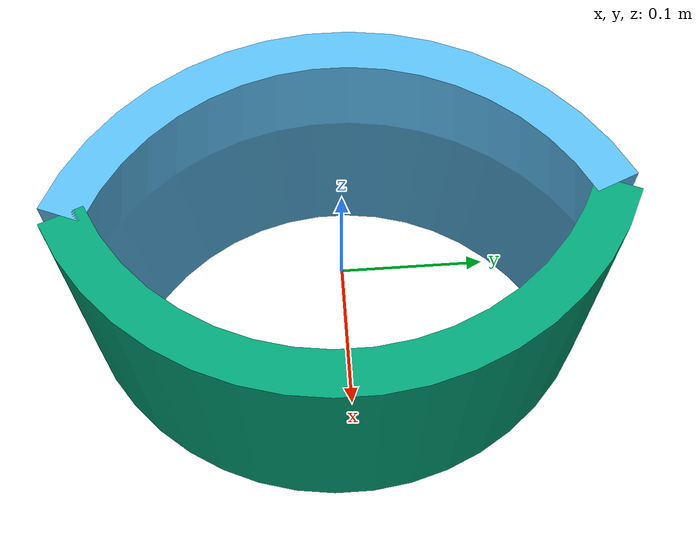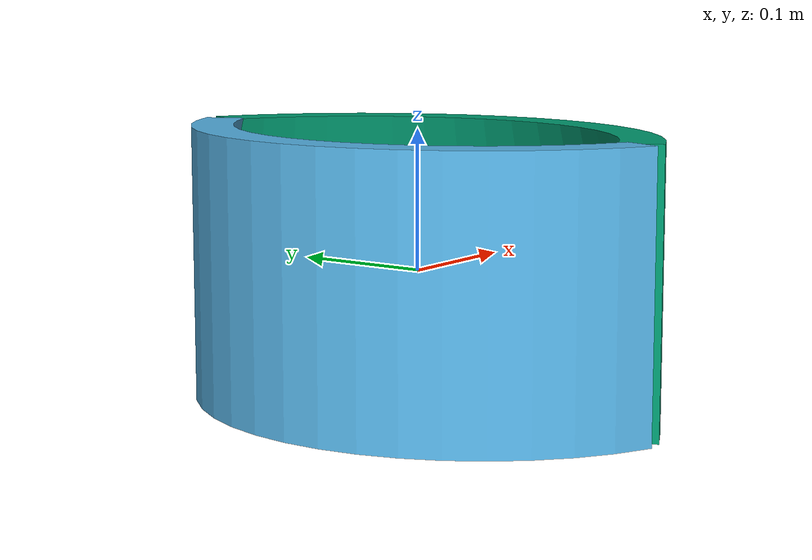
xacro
<?xml version="1.0"?>
<robot name="gripper"
       xmlns:xacro="http://ros.org/wiki/xacro">

  <!-- Switch between EffortJointInterface and PositionJointInterface, still requires change in yaml files -->
  <xacro:property name="using_position_not_effort" value="true" />

  <!-- Constants for gripper joint controllers -->
  <xacro:property name="effort_limit" value="5000" />
  <xacro:property name="gripper_friction" value="100" />
  <xacro:property name="gripper_min_depth" value="0.001" />  <!-- Default is 0 -->
  <xacro:property name="gripper_max_vel" value="0.01" />  <!-- Default is 0.01 -->

  <!-- Phantom link for center of gripper -->
  <link name="gripper_center" >
    <inertial>
      <mass value="0.01"/>
      <inertia ixx="0.0001" ixy="0.0" ixz="0.0" iyy="0.0001" iyz="0.0" izz="0.0001"/>
    </inertial>
  </link>

  <!-- One side of gripper -->
  <link name="side_p" >
    <visual>
      <origin xyz="0 0.177 0" rpy="${pi / 2} 0 ${5 * pi / 8}" />
      <geometry>
	<mesh filename="package://mobile_manipulator/models/gripper_fake/meshes/gripperClaw.STL"/>
      </geometry>
    </visual>
    <collision>
      <origin xyz="0 0.177 0" rpy="${pi / 2} 0 ${5 * pi / 8}" />
      <geometry>
	<mesh filename="package://mobile_manipulator/models/gripper_fake/meshes/gripperClaw.STL"/>
      </geometry>
    </collision>
    <inertial>
      <mass value="1" />
      <inertia ixx="0.01" ixy="0.005" ixz="0.0003" iyy="0.02" iyz="0.00004" izz="0.02" />
    </inertial>
  </link>

  <!-- Second side of gripper -->
  <link name="side_d" >
    <visual>
      <origin xyz="0 -0.177 0" rpy="${pi / 2} 0 ${-3 * pi / 8}" />
      <geometry>
	<mesh filename="package://mobile_manipulator/models/gripper_fake/meshes/gripperClaw.STL"/>
      </geometry>
    </visual>
    <collision>
      <origin xyz="0 -0.177 0" rpy="${pi / 2} 0 ${-3 * pi / 8}" />
      <geometry>
	<mesh filename="package://mobile_manipulator/models/gripper_fake/meshes/gripperClaw.STL"/>
      </geometry>
    </collision>
    <inertial>
      <mass value="1" />
      <inertia ixx="0.01" ixy="0.005" ixz="0.0003" iyy="0.02" iyz="0.00004" izz="0.02" />
    </inertial>
  </link>

  <!-- Prismatic joint -->
  <joint name="gripper_joint_p" type="prismatic">
    <origin xyz="0 0 0" rpy="0 0 0" />
    <parent link="gripper_center" />
    <child link="side_p" />
    <limit effort="${effort_limit}" lower="-100" upper="100" velocity="0.5"/>
  </joint>

  <joint name="gripper_joint_d" type="prismatic">
    <origin xyz="0 0 0" rpy="0 0 0" />
    <parent link="gripper_center" />
    <child link="side_d" />
    <limit effort="${effort_limit}" lower="-100" upper="100" velocity="0.5"/>
  </joint>

  <!-- Transmission for ROS control -->
  <xacro:if value="${using_position_not_effort == 'true'}">
    <transmission name="gripper_joint_transmission_p">
      <type>transmission_interface/SimpleTransmission</type>
      <joint name="gripper_joint_p">
	<hardwareInterface>hardware_interface/PositionJointInterface</hardwareInterface>
      </joint>
      <actuator name="gripper_joint_motor_p">
	<hardwareInterface>hardware_interface/PositionJointInterface</hardwareInterface>
	<mechanicalReduction>1</mechanicalReduction>
      </actuator>
    </transmission>

    <transmission name="gripper_joint_transmission_d">
      <type>transmission_interface/SimpleTransmission</type>
      <joint name="gripper_joint_d">
	<hardwareInterface>hardware_interface/PositionJointInterface</hardwareInterface>
      </joint>
      <actuator name="gripper_joint_motor_d">
	<hardwareInterface>hardware_interface/PositionJointInterface</hardwareInterface>
	<mechanicalReduction>1</mechanicalReduction>
      </actuator>
    </transmission>
  </xacro:if>

  <xacro:if value="${using_position_not_effort == 'false'}">
    <transmission name="gripper_joint_transmission_p">
      <type>transmission_interface/SimpleTransmission</type>
      <joint name="gripper_joint_p">
	<hardwareInterface>hardware_interface/EffortJointInterface</hardwareInterface>
      </joint>
      <actuator name="gripper_joint_motor_p">
	<hardwareInterface>hardware_interface/EffortJointInterface</hardwareInterface>
	<mechanicalReduction>1</mechanicalReduction>
      </actuator>
    </transmission>

    <transmission name="gripper_joint_transmission_d">
      <type>transmission_interface/SimpleTransmission</type>
      <joint name="gripper_joint_d">
	<hardwareInterface>hardware_interface/EffortJointInterface</hardwareInterface>
      </joint>
      <actuator name="gripper_joint_motor_d">
	<hardwareInterface>hardware_interface/EffortJointInterface</hardwareInterface>
	<mechanicalReduction>1</mechanicalReduction>
      </actuator>
    </transmission>
  </xacro:if>

  <!-- Enable joint feedback -->
  <gazebo reference="gripper_joint_p">
    <provideFeedback>true</provideFeedback>
  </gazebo>

  <gazebo reference="gripper_joint_d">
    <provideFeedback>true</provideFeedback>
  </gazebo>

  <!-- ft_sensor plugin -->
  <gazebo>
    <plugin name="ft_sensor_p" filename="libgazebo_ros_ft_sensor.so">
      <updateRate>100.0</updateRate>
      <topicName>ft_sensor_topic_p</topicName>
      <jointName>gripper_joint_p</jointName>
    </plugin>
  </gazebo>

  <gazebo>
    <plugin name="ft_sensor_d" filename="libgazebo_ros_ft_sensor.so">
      <updateRate>100.0</updateRate>
      <topicName>ft_sensor_topic_d</topicName>
      <jointName>gripper_joint_d</jointName>
    </plugin>
  </gazebo>

  <!-- High friction on gripper -->
  <gazebo reference="side_p">
    <mu1>${gripper_friction}</mu1>
    <mu2>${gripper_friction}</mu2>
    <minDepth>${gripper_min_depth}</minDepth>
    <maxVel>${gripper_max_vel}</maxVel>
  </gazebo>

  <gazebo reference="side_d">
    <mu1>${gripper_friction}</mu1>
    <mu2>${gripper_friction}</mu2>
    <minDepth>${gripper_min_depth}</minDepth>
    <maxVel>${gripper_max_vel}</maxVel>
  </gazebo>

</robot>
